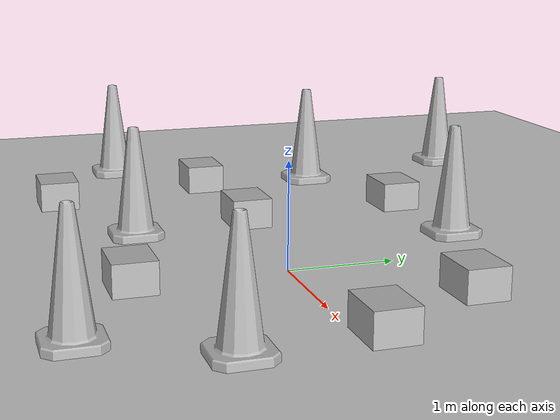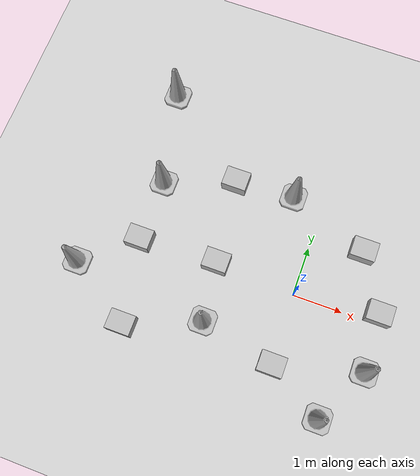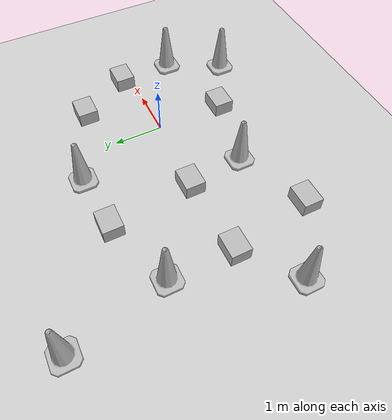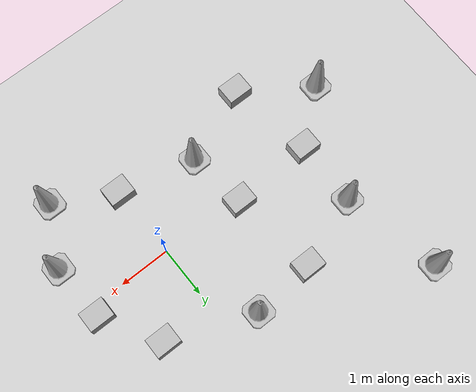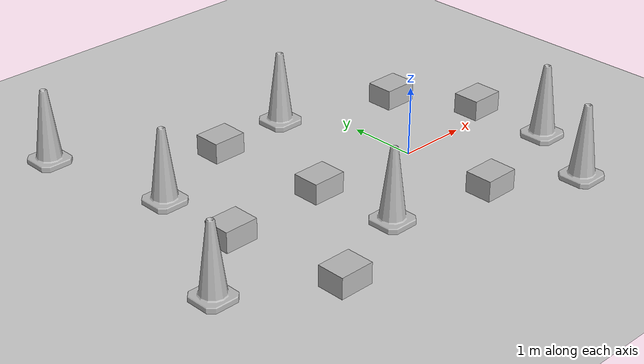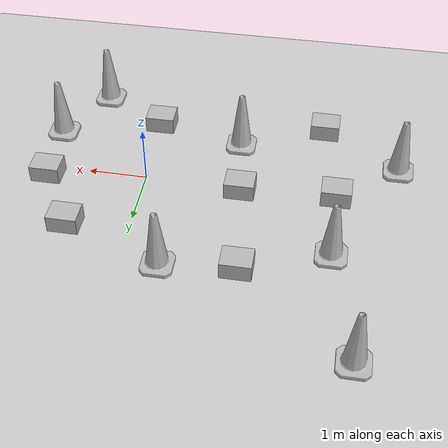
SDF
<sdf version="1.7">
 <world name="default">
  <light name="sun" type="directional">
   <pose>0 0 10 0 -0 0</pose>
   <diffuse>0.8 0.8 0.8 1</diffuse>
   <specular>0.2 0.2 0.2 1</specular>
   <attenuation>
    <range>1000</range>
    <constant>0.9</constant>
    <linear>0.01</linear>
    <quadratic>0.001</quadratic>
   </attenuation>
   <direction>-0.5 0.1 -0.9</direction>
   <spot><inner_angle>0</inner_angle><outer_angle>0</outer_angle><falloff>0</falloff></spot>
  </light>
  <model name="ground_plane">
   <static>1</static>
   <link name="link">
    <collision name="collision">
     <geometry><plane><normal>0 0 1</normal><size>100 100</size></plane></geometry>
     <surface><friction><ode><mu>100</mu><mu2>50</mu2></ode></friction></surface>
    </collision>
    <visual name="visual">
     <cast_shadows>0</cast_shadows>
     <geometry><plane><normal>0 0 1</normal><size>100 100</size></plane></geometry>
     <material>
      <script><uri>file://media/materials/scripts/gazebo.material</uri><name>Gazebo/Grey</name></script>
     </material>
    </visual>
   </link>
  </model>
  <gravity>0 0 -9.8</gravity>
  <magnetic_field>6e-06 2.3e-05 -4.2e-05</magnetic_field>
  <atmosphere type="adiabatic"/>
  <physics type="ode">
   <max_step_size>0.001</max_step_size>
   <real_time_factor>1</real_time_factor>
   <real_time_update_rate>1000</real_time_update_rate>
  </physics>
  <scene><ambient>0.4 0.4 0.4 1</ambient><background>0.7 0.7 0.7 1</background><shadows>1</shadows></scene>
  <spherical_coordinates>
   <surface_model>EARTH_WGS84</surface_model>
   <latitude_deg>0</latitude_deg>
   <longitude_deg>0</longitude_deg>
   <elevation>0</elevation>
   <heading_deg>0</heading_deg>
  </spherical_coordinates>
  <model name="Construction Cone">
   <link name="link">
    <collision name="collision">
     <geometry>
      <mesh><scale>10 10 10</scale><uri>model://construction_cone/meshes/construction_cone.dae</uri></mesh>
     </geometry>
    </collision>
    <visual name="visual">
     <geometry>
      <mesh><scale>10 10 10</scale><uri>model://construction_cone/meshes/construction_cone.dae</uri></mesh>
     </geometry>
    </visual>
    <inertial>
     <inertia><ixx>1</ixx><ixy>0</ixy><ixz>0</ixz><iyy>1</iyy><iyz>0</iyz><izz>1</izz></inertia>
     <mass>1</mass>
    </inertial>
   </link>
   <pose>-3.23376 1.31128 -0 0 -0 0</pose>
  </model>
  <model name="Construction Cone_0">
   <link name="link">
    <collision name="collision">
     <geometry>
      <mesh><scale>10 10 10</scale><uri>model://construction_cone/meshes/construction_cone.dae</uri></mesh>
     </geometry>
    </collision>
    <visual name="visual">
     <geometry>
      <mesh><scale>10 10 10</scale><uri>model://construction_cone/meshes/construction_cone.dae</uri></mesh>
     </geometry>
    </visual>
    <inertial>
     <inertia><ixx>1</ixx><ixy>0</ixy><ixz>0</ixz><iyy>1</iyy><iyz>0</iyz><izz>1</izz></inertia>
     <mass>1</mass>
    </inertial>
   </link>
   <pose>-1.48338 -1.08178 -6e-06 -4e-06 0 0</pose>
  </model>
  <model name="Construction Cone_1">
   <link name="link">
    <collision name="collision">
     <geometry>
      <mesh><scale>10 10 10</scale><uri>model://construction_cone/meshes/construction_cone.dae</uri></mesh>
     </geometry>
    </collision>
    <visual name="visual">
     <geometry>
      <mesh><scale>10 10 10</scale><uri>model://construction_cone/meshes/construction_cone.dae</uri></mesh>
     </geometry>
    </visual>
    <inertial>
     <inertia><ixx>1</ixx><ixy>0</ixy><ixz>0</ixz><iyy>1</iyy><iyz>0</iyz><izz>1</izz></inertia>
     <mass>1</mass>
    </inertial>
   </link>
   <pose>1.16142 -2.05678 -0 0 -0 0</pose>
  </model>
  <model name="Construction Cone_2">
   <link name="link">
    <collision name="collision">
     <geometry>
      <mesh><scale>10 10 10</scale><uri>model://construction_cone/meshes/construction_cone.dae</uri></mesh>
     </geometry>
    </collision>
    <visual name="visual">
     <geometry>
      <mesh><scale>10 10 10</scale><uri>model://construction_cone/meshes/construction_cone.dae</uri></mesh>
     </geometry>
    </visual>
    <inertial>
     <inertia><ixx>1</ixx><ixy>0</ixy><ixz>0</ixz><iyy>1</iyy><iyz>0</iyz><izz>1</izz></inertia>
     <mass>1</mass>
    </inertial>
   </link>
   <pose>1.73634 -0.944217 -0 0 -0 0</pose>
  </model>
  <model name="Construction Cone_3">
   <link name="link">
    <collision name="collision">
     <geometry>
      <mesh><scale>10 10 10</scale><uri>model://construction_cone/meshes/construction_cone.dae</uri></mesh>
     </geometry>
    </collision>
    <visual name="visual">
     <geometry>
      <mesh><scale>10 10 10</scale><uri>model://construction_cone/meshes/construction_cone.dae</uri></mesh>
     </geometry>
    </visual>
    <inertial>
     <inertia><ixx>1</ixx><ixy>0</ixy><ixz>0</ixz><iyy>1</iyy><iyz>0</iyz><izz>1</izz></inertia>
     <mass>1</mass>
    </inertial>
   </link>
   <pose>-0.627204 1.91514 -0 0 -0 0</pose>
  </model>
  <model name="Construction Cone_4">
   <link name="link">
    <collision name="collision">
     <geometry>
      <mesh><scale>10 10 10</scale><uri>model://construction_cone/meshes/construction_cone.dae</uri></mesh>
     </geometry>
    </collision>
    <visual name="visual">
     <geometry>
      <mesh><scale>10 10 10</scale><uri>model://construction_cone/meshes/construction_cone.dae</uri></mesh>
     </geometry>
    </visual>
    <inertial>
     <inertia><ixx>1</ixx><ixy>0</ixy><ixz>0</ixz><iyy>1</iyy><iyz>0</iyz><izz>1</izz></inertia>
     <mass>1</mass>
    </inertial>
   </link>
   <pose>-3.6732 3.24671 0 -0 -0 -0</pose>
  </model>
  <model name="cardboard_box">
   <pose>-1.63173 0.093188 0.149 0 -0 0</pose>
   <link name="link">
    <inertial>
     <mass>2</mass>
     <inertia>
      <ixx>0.0416667</ixx>
      <ixy>0</ixy>
      <ixz>0</ixz>
      <iyy>0.0566667</iyy>
      <iyz>0</iyz>
      <izz>0.0683333</izz>
     </inertia>
    </inertial>
    <collision name="collision">
     <geometry><box><size>0.5 0.4 0.3</size></box></geometry>
     <surface>
      <friction><ode><mu>1</mu><mu2>1</mu2></ode></friction>
      <contact><ode><kp>1e+07</kp><kd>1</kd><min_depth>0.001</min_depth><max_vel>0.1</max_vel></ode></contact>
     </surface>
    </collision>
    <visual name="visual">
     <pose>0 0 -0.15 0 -0 0</pose>
     <geometry>
      <mesh><uri>model://cardboard_box/meshes/cardboard_box.dae</uri><scale>1.25932 1.00745 0.755591</scale></mesh>
     </geometry>
    </visual>
   </link>
  </model>
  <model name="cardboard_box_0">
   <pose>-1.83846 1.8157 0.149 0 -0 0</pose>
   <link name="link">
    <inertial>
     <mass>2</mass>
     <inertia>
      <ixx>0.0416667</ixx>
      <ixy>0</ixy>
      <ixz>0</ixz>
      <iyy>0.0566667</iyy>
      <iyz>0</iyz>
      <izz>0.0683333</izz>
     </inertia>
    </inertial>
    <collision name="collision">
     <geometry><box><size>0.5 0.4 0.3</size></box></geometry>
     <surface>
      <friction><ode><mu>1</mu><mu2>1</mu2></ode></friction>
      <contact><ode><kp>1e+07</kp><kd>1</kd><min_depth>0.001</min_depth><max_vel>0.1</max_vel></ode></contact>
     </surface>
    </collision>
    <visual name="visual">
     <pose>0 0 -0.15 0 -0 0</pose>
     <geometry>
      <mesh><uri>model://cardboard_box/meshes/cardboard_box.dae</uri><scale>1.25932 1.00745 0.755591</scale></mesh>
     </geometry>
    </visual>
   </link>
  </model>
  <model name="cardboard_box_1">
   <pose>-3.227 0.01634 0.149 0 -0 0</pose>
   <link name="link">
    <inertial>
     <mass>2</mass>
     <inertia>
      <ixx>0.0416667</ixx>
      <ixy>0</ixy>
      <ixz>0</ixz>
      <iyy>0.0566667</iyy>
      <iyz>0</iyz>
      <izz>0.0683333</izz>
     </inertia>
    </inertial>
    <collision name="collision">
     <geometry><box><size>0.5 0.4 0.3</size></box></geometry>
     <surface>
      <friction><ode><mu>1</mu><mu2>1</mu2></ode></friction>
      <contact><ode><kp>1e+07</kp><kd>1</kd><min_depth>0.001</min_depth><max_vel>0.1</max_vel></ode></contact>
     </surface>
    </collision>
    <visual name="visual">
     <pose>0 0 -0.15 0 -0 0</pose>
     <geometry>
      <mesh><uri>model://cardboard_box/meshes/cardboard_box.dae</uri><scale>1.25932 1.00745 0.755591</scale></mesh>
     </geometry>
    </visual>
   </link>
  </model>
  <model name="cardboard_box_2">
   <pose>1.0204 1.29675 0.149 0 -0 0</pose>
   <link name="link">
    <inertial>
     <mass>2</mass>
     <inertia>
      <ixx>0.0416667</ixx>
      <ixy>0</ixy>
      <ixz>0</ixz>
      <iyy>0.0566667</iyy>
      <iyz>0</iyz>
      <izz>0.0683333</izz>
     </inertia>
    </inertial>
    <collision name="collision">
     <geometry><box><size>0.5 0.4 0.3</size></box></geometry>
     <surface>
      <friction><ode><mu>1</mu><mu2>1</mu2></ode></friction>
      <contact><ode><kp>1e+07</kp><kd>1</kd><min_depth>0.001</min_depth><max_vel>0.1</max_vel></ode></contact>
     </surface>
    </collision>
    <visual name="visual">
     <pose>0 0 -0.15 0 -0 0</pose>
     <geometry>
      <mesh><uri>model://cardboard_box/meshes/cardboard_box.dae</uri><scale>1.25932 1.00745 0.755591</scale></mesh>
     </geometry>
    </visual>
   </link>
  </model>
  <model name="cardboard_box_3">
   <pose>0.028881 -1.41721 0.149 0 -0 0</pose>
   <link name="link">
    <inertial>
     <mass>2</mass>
     <inertia>
      <ixx>0.0416667</ixx>
      <ixy>0</ixy>
      <ixz>0</ixz>
      <iyy>0.0566667</iyy>
      <iyz>0</iyz>
      <izz>0.0683333</izz>
     </inertia>
    </inertial>
    <collision name="collision">
     <geometry><box><size>0.5 0.4 0.3</size></box></geometry>
     <surface>
      <friction><ode><mu>1</mu><mu2>1</mu2></ode></friction>
      <contact><ode><kp>1e+07</kp><kd>1</kd><min_depth>0.001</min_depth><max_vel>0.1</max_vel></ode></contact>
     </surface>
    </collision>
    <visual name="visual">
     <pose>0 0 -0.15 0 -0 0</pose>
     <geometry>
      <mesh><uri>model://cardboard_box/meshes/cardboard_box.dae</uri><scale>1.25932 1.00745 0.755591</scale></mesh>
     </geometry>
    </visual>
   </link>
  </model>
  <model name="cardboard_box_4">
   <pose>1.66632 0.201575 0.149 0 -0 0</pose>
   <link name="link">
    <inertial>
     <mass>2</mass>
     <inertia>
      <ixx>0.0416667</ixx>
      <ixy>0</ixy>
      <ixz>0</ixz>
      <iyy>0.0566667</iyy>
      <iyz>0</iyz>
      <izz>0.0683333</izz>
     </inertia>
    </inertial>
    <collision name="collision">
     <geometry><box><size>0.5 0.4 0.3</size></box></geometry>
     <surface>
      <friction><ode><mu>1</mu><mu2>1</mu2></ode></friction>
      <contact><ode><kp>1e+07</kp><kd>1</kd><min_depth>0.001</min_depth><max_vel>0.1</max_vel></ode></contact>
     </surface>
    </collision>
    <visual name="visual">
     <pose>0 0 -0.15 0 -0 0</pose>
     <geometry>
      <mesh><uri>model://cardboard_box/meshes/cardboard_box.dae</uri><scale>1.25932 1.00745 0.755591</scale></mesh>
     </geometry>
    </visual>
   </link>
  </model>
  <model name="cardboard_box_5">
   <pose>-2.92197 -1.66823 0.149021 2e-06 -2e-06 -0</pose>
   <link name="link">
    <inertial>
     <mass>2</mass>
     <inertia>
      <ixx>0.0416667</ixx>
      <ixy>0</ixy>
      <ixz>0</ixz>
      <iyy>0.0566667</iyy>
      <iyz>0</iyz>
      <izz>0.0683333</izz>
     </inertia>
    </inertial>
    <collision name="collision">
     <geometry><box><size>0.5 0.4 0.3</size></box></geometry>
     <surface>
      <friction><ode><mu>1</mu><mu2>1</mu2></ode></friction>
      <contact><ode><kp>1e+07</kp><kd>1</kd><min_depth>0.001</min_depth><max_vel>0.1</max_vel></ode></contact>
     </surface>
    </collision>
    <visual name="visual">
     <pose>0 0 -0.15 0 -0 0</pose>
     <geometry>
      <mesh><uri>model://cardboard_box/meshes/cardboard_box.dae</uri><scale>1.25932 1.00745 0.755591</scale></mesh>
     </geometry>
    </visual>
   </link>
  </model>
  <model name="Construction Cone_5">
   <link name="link">
    <collision name="collision">
     <geometry>
      <mesh><scale>10 10 10</scale><uri>model://construction_cone/meshes/construction_cone.dae</uri></mesh>
     </geometry>
    </collision>
    <visual name="visual">
     <geometry>
      <mesh><scale>10 10 10</scale><uri>model://construction_cone/meshes/construction_cone.dae</uri></mesh>
     </geometry>
    </visual>
    <inertial>
     <inertia><ixx>1</ixx><ixy>0</ixy><ixz>0</ixz><iyy>1</iyy><iyz>0</iyz><izz>1</izz></inertia>
     <mass>1</mass>
    </inertial>
   </link>
   <pose>-4.23858 -0.81452 -0 0 -1e-06 0</pose>
  </model>
 </world>
</sdf>
